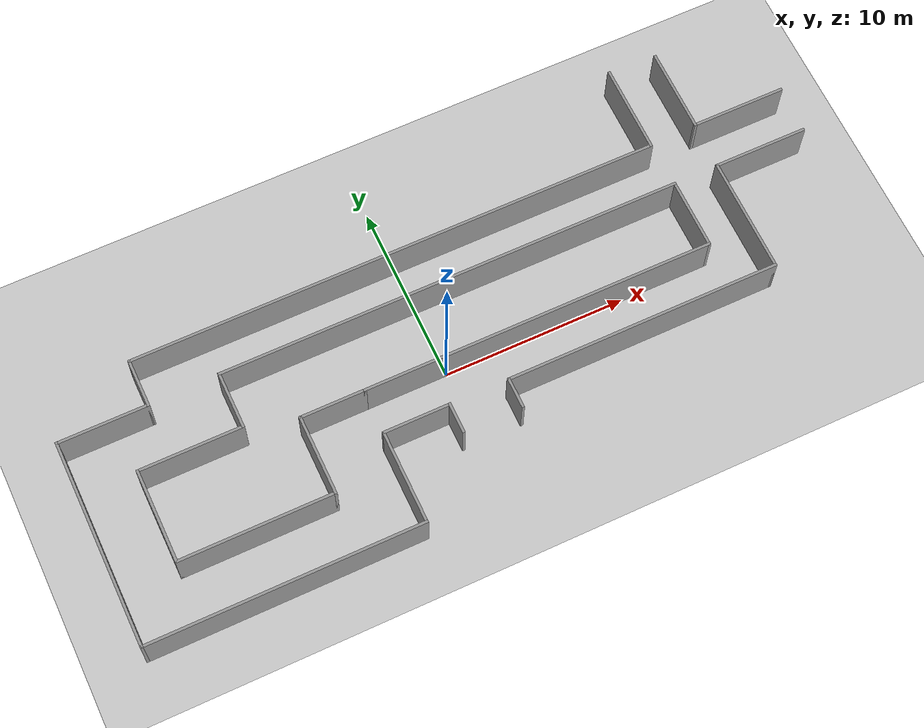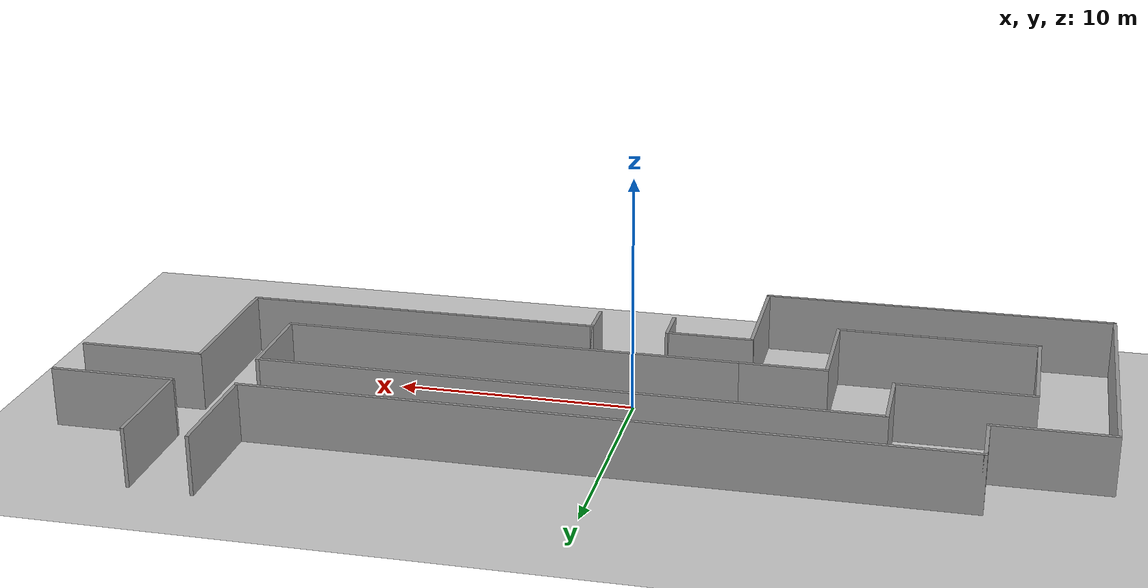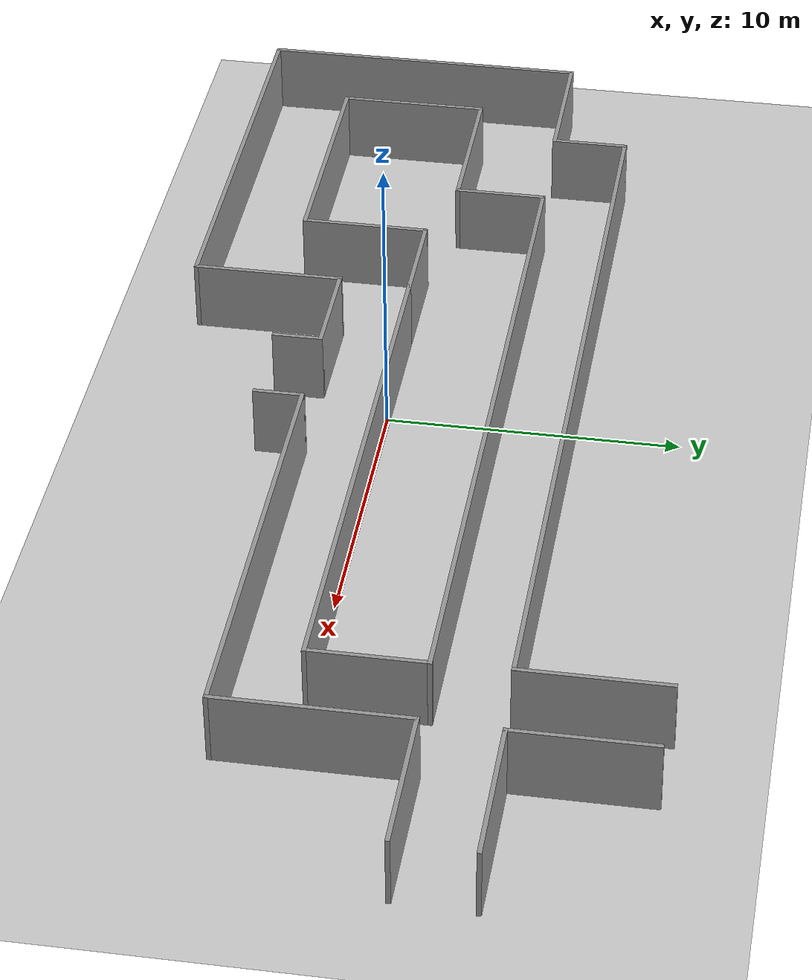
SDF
<sdf version="1.6">
 <world name="default">
  <light name="sun" type="directional">
   <pose>0 0 10 0 -0 0</pose>
   <diffuse>0.8 0.8 0.8 1</diffuse>
   <specular>0.1 0.1 0.1 1</specular>
   <attenuation>
    <range>1000</range>
    <constant>0.9</constant>
    <linear>0.01</linear>
    <quadratic>0.001</quadratic>
   </attenuation>
   <direction>-0.5 0.5 -1</direction>
  </light>
  <model name="ground_plane">
   <static>1</static>
   <link name="link">
    <collision name="collision">
     <geometry><plane><normal>0 0 1</normal><size>100 100</size></plane></geometry>
     <surface><friction><ode><mu>100</mu><mu2>50</mu2></ode></friction></surface>
    </collision>
    <visual name="visual">
     <cast_shadows>0</cast_shadows>
     <geometry><plane><normal>0 0 1</normal><size>100 100</size></plane></geometry>
     <material>
      <script><uri>file://media/materials/scripts/gazebo.material</uri><name>Gazebo/Grey</name></script>
     </material>
    </visual>
   </link>
  </model>
  <gravity>0 0 -9.8</gravity>
  <magnetic_field>6e-06 2.3e-05 -4.2e-05</magnetic_field>
  <atmosphere type="adiabatic"/>
  <physics name="default_physics" default="0" type="ode">
   <max_step_size>0.001</max_step_size>
   <real_time_factor>1</real_time_factor>
   <real_time_update_rate>1000</real_time_update_rate>
  </physics>
  <scene><ambient>0.4 0.4 0.4 1</ambient><background>0.7 0.7 0.7 1</background><shadows>1</shadows></scene>
  <spherical_coordinates>
   <surface_model>EARTH_WGS84</surface_model>
   <latitude_deg>0</latitude_deg>
   <longitude_deg>0</longitude_deg>
   <elevation>0</elevation>
   <heading_deg>0</heading_deg>
  </spherical_coordinates>
  <model name="multi_test.world">
   <pose>1.57993 1.86 0 0 -0 0</pose>
   <link name="Wall_0">
    <collision name="Wall_0_Collision">
     <geometry><box><size>3.75 0.15 2.5</size></box></geometry>
     <pose>0 0 1.25 0 -0 0</pose>
    </collision>
    <visual name="Wall_0_Visual">
     <pose>0 0 1.25 0 -0 0</pose>
     <geometry><box><size>3.75 0.15 2.5</size></box></geometry>
     <material>
      <script><uri>file://media/materials/scripts/gazebo.material</uri><name>Gazebo/Grey</name></script>
      <ambient>1 1 1 1</ambient>
     </material>
    </visual>
    <pose>-4.33993 -4.3 0 0 -0 0</pose>
   </link>
   <link name="Wall_1">
    <collision name="Wall_1_Collision">
     <geometry><box><size>1.75 0.15 2.5</size></box></geometry>
     <pose>0 0 1.25 0 -0 0</pose>
    </collision>
    <visual name="Wall_1_Visual">
     <pose>0 0 1.25 0 -0 0</pose>
     <geometry><box><size>1.75 0.15 2.5</size></box></geometry>
     <material>
      <script><uri>file://media/materials/scripts/gazebo.material</uri><name>Gazebo/Grey</name></script>
      <ambient>1 1 1 1</ambient>
     </material>
    </visual>
    <pose>-2.53993 -5.1 0 0 0 -1.5708</pose>
   </link>
   <link name="Wall_10">
    <collision name="Wall_10_Collision">
     <geometry><box><size>25.75 0.15 2.5</size></box></geometry>
     <pose>0 0 1.25 0 -0 0</pose>
    </collision>
    <visual name="Wall_10_Visual">
     <pose>0 0 1.25 0 -0 0</pose>
     <geometry><box><size>25.75 0.15 2.5</size></box></geometry>
     <material>
      <script><uri>file://media/materials/scripts/gazebo.material</uri><name>Gazebo/Grey</name></script>
      <ambient>1 1 1 1</ambient>
     </material>
    </visual>
    <pose>0.492235 2.01907 0 0 -0 3.14159</pose>
   </link>
   <link name="Wall_11">
    <collision name="Wall_11_Collision">
     <geometry><box><size>3.25 0.15 2.5</size></box></geometry>
     <pose>0 0 1.25 0 -0 0</pose>
    </collision>
    <visual name="Wall_11_Visual">
     <pose>0 0 1.25 0 -0 0</pose>
     <geometry><box><size>3.25 0.15 2.5</size></box></geometry>
     <material>
      <script><uri>file://media/materials/scripts/gazebo.material</uri><name>Gazebo/Grey</name></script>
      <ambient>1 1 1 1</ambient>
     </material>
    </visual>
    <pose>-12.3078 0.469066 0 0 0 -1.5708</pose>
   </link>
   <link name="Wall_12">
    <collision name="Wall_12_Collision">
     <geometry><box><size>5.75 0.15 2.5</size></box></geometry>
     <pose>0 0 1.25 0 -0 0</pose>
    </collision>
    <visual name="Wall_12_Visual">
     <pose>0 0 1.25 0 -0 0</pose>
     <geometry><box><size>5.75 0.15 2.5</size></box></geometry>
     <material>
      <script><uri>file://media/materials/scripts/gazebo.material</uri><name>Gazebo/Grey</name></script>
      <ambient>1 1 1 1</ambient>
     </material>
    </visual>
    <pose>-15.1078 -1.08093 0 0 -0 3.14159</pose>
   </link>
   <link name="Wall_13">
    <collision name="Wall_13_Collision">
     <geometry><box><size>5.25 0.15 2.5</size></box></geometry>
     <pose>0 0 1.25 0 -0 0</pose>
    </collision>
    <visual name="Wall_13_Visual">
     <pose>0 0 1.25 0 -0 0</pose>
     <geometry><box><size>5.25 0.15 2.5</size></box></geometry>
     <material>
      <script><uri>file://media/materials/scripts/gazebo.material</uri><name>Gazebo/Grey</name></script>
      <ambient>1 1 1 1</ambient>
     </material>
    </visual>
    <pose>-17.9078 -3.63093 0 0 0 -1.5708</pose>
   </link>
   <link name="Wall_14">
    <collision name="Wall_14_Collision">
     <geometry><box><size>8.5 0.15 2.5</size></box></geometry>
     <pose>0 0 1.25 0 -0 0</pose>
    </collision>
    <visual name="Wall_14_Visual">
     <pose>0 0 1.25 0 -0 0</pose>
     <geometry><box><size>8.5 0.15 2.5</size></box></geometry>
     <material>
      <script><uri>file://media/materials/scripts/gazebo.material</uri><name>Gazebo/Grey</name></script>
      <ambient>1 1 1 1</ambient>
     </material>
    </visual>
    <pose>-13.7328 -6.18093 0 0 -0 0</pose>
   </link>
   <link name="Wall_15">
    <collision name="Wall_15_Collision">
     <geometry><box><size>4.5 0.15 2.5</size></box></geometry>
     <pose>0 0 1.25 0 -0 0</pose>
    </collision>
    <visual name="Wall_15_Visual">
     <pose>0 0 1.25 0 -0 0</pose>
     <geometry><box><size>4.5 0.15 2.5</size></box></geometry>
     <material>
      <script><uri>file://media/materials/scripts/gazebo.material</uri><name>Gazebo/Grey</name></script>
      <ambient>1 1 1 1</ambient>
     </material>
    </visual>
    <pose>-9.55776 -4.00593 0 0 -0 1.5708</pose>
   </link>
   <link name="Wall_16">
    <collision name="Wall_16_Collision">
     <geometry><box><size>3.65 0.15 2.5</size></box></geometry>
     <pose>0 0 1.25 0 -0 0</pose>
    </collision>
    <visual name="Wall_16_Visual">
     <pose>0 0 1.25 0 -0 0</pose>
     <geometry><box><size>3.65 0.15 2.5</size></box></geometry>
     <material>
      <script><uri>file://media/materials/scripts/gazebo.material</uri><name>Gazebo/Grey</name></script>
      <ambient>1 1 1 1</ambient>
     </material>
    </visual>
    <pose>-7.80776 -1.83093 0 0 -0 0</pose>
   </link>
   <link name="Wall_18">
    <collision name="Wall_18_Collision">
     <geometry><box><size>5.25 0.15 2.5</size></box></geometry>
     <pose>0 0 1.25 0 -0 0</pose>
    </collision>
    <visual name="Wall_18_Visual">
     <pose>0 0 1.25 0 -0 0</pose>
     <geometry><box><size>5.25 0.15 2.5</size></box></geometry>
     <material>
      <script><uri>file://media/materials/scripts/gazebo.material</uri><name>Gazebo/Grey</name></script>
      <ambient>1 1 1 1</ambient>
     </material>
    </visual>
    <pose>18.3483 2.03305 0 0 -0 0</pose>
   </link>
   <link name="Wall_20">
    <collision name="Wall_20_Collision">
     <geometry><box><size>5.25 0.15 2.5</size></box></geometry>
     <pose>0 0 1.25 0 -0 0</pose>
    </collision>
    <visual name="Wall_20_Visual">
     <pose>0 0 1.25 0 -0 0</pose>
     <geometry><box><size>5.25 0.15 2.5</size></box></geometry>
     <material>
      <script><uri>file://media/materials/scripts/gazebo.material</uri><name>Gazebo/Grey</name></script>
      <ambient>1 1 1 1</ambient>
     </material>
    </visual>
    <pose>18.4399 4.67245 0 0 -0 3.14159</pose>
   </link>
   <link name="Wall_21">
    <collision name="Wall_21_Collision">
     <geometry><box><size>4.75 0.15 2.5</size></box></geometry>
     <pose>0 0 1.25 0 -0 0</pose>
    </collision>
    <visual name="Wall_21_Visual">
     <pose>0 0 1.25 0 -0 0</pose>
     <geometry><box><size>4.75 0.15 2.5</size></box></geometry>
     <material>
      <script><uri>file://media/materials/scripts/gazebo.material</uri><name>Gazebo/Grey</name></script>
      <ambient>1 1 1 1</ambient>
     </material>
    </visual>
    <pose>15.8899 6.97245 0 0 -0 1.5708</pose>
   </link>
   <link name="Wall_23">
    <collision name="Wall_23_Collision">
     <geometry><box><size>5.25 0.15 2.5</size></box></geometry>
     <pose>0 0 1.25 0 -0 0</pose>
    </collision>
    <visual name="Wall_23_Visual">
     <pose>0 0 1.25 0 -0 0</pose>
     <geometry><box><size>5.25 0.15 2.5</size></box></geometry>
     <material>
      <script><uri>file://media/materials/scripts/gazebo.material</uri><name>Gazebo/Grey</name></script>
      <ambient>1 1 1 1</ambient>
     </material>
    </visual>
    <pose>-6.13993 -6.85 0 0 0 -1.5708</pose>
   </link>
   <link name="Wall_24">
    <collision name="Wall_24_Collision">
     <geometry><box><size>15 0.15 2.5</size></box></geometry>
     <pose>0 0 1.25 0 -0 0</pose>
    </collision>
    <visual name="Wall_24_Visual">
     <pose>0 0 1.25 0 -0 0</pose>
     <geometry><box><size>15 0.15 2.5</size></box></geometry>
     <material>
      <script><uri>file://media/materials/scripts/gazebo.material</uri><name>Gazebo/Grey</name></script>
      <ambient>1 1 1 1</ambient>
     </material>
    </visual>
    <pose>-13.5649 -9.4 0 0 -0 3.14159</pose>
   </link>
   <link name="Wall_25">
    <collision name="Wall_25_Collision">
     <geometry><box><size>11.5 0.15 2.5</size></box></geometry>
     <pose>0 0 1.25 0 -0 0</pose>
    </collision>
    <visual name="Wall_25_Visual">
     <pose>0 0 1.25 0 -0 0</pose>
     <geometry><box><size>11.5 0.15 2.5</size></box></geometry>
     <material>
      <script><uri>file://media/materials/scripts/gazebo.material</uri><name>Gazebo/Grey</name></script>
      <ambient>1 1 1 1</ambient>
     </material>
    </visual>
    <pose>-20.9899 -3.725 0 0 -0 1.5708</pose>
   </link>
   <link name="Wall_26">
    <collision name="Wall_26_Collision">
     <geometry><box><size>5 0.15 2.5</size></box></geometry>
     <pose>0 0 1.25 0 -0 0</pose>
    </collision>
    <visual name="Wall_26_Visual">
     <pose>0 0 1.25 0 -0 0</pose>
     <geometry><box><size>5 0.15 2.5</size></box></geometry>
     <material>
      <script><uri>file://media/materials/scripts/gazebo.material</uri><name>Gazebo/Grey</name></script>
      <ambient>1 1 1 1</ambient>
     </material>
    </visual>
    <pose>-18.5649 1.95 0 0 -0 0</pose>
   </link>
   <link name="Wall_27">
    <collision name="Wall_27_Collision">
     <geometry><box><size>2.75 0.15 2.5</size></box></geometry>
     <pose>0 0 1.25 0 -0 0</pose>
    </collision>
    <visual name="Wall_27_Visual">
     <pose>0 0 1.25 0 -0 0</pose>
     <geometry><box><size>2.75 0.15 2.5</size></box></geometry>
     <material>
      <script><uri>file://media/materials/scripts/gazebo.material</uri><name>Gazebo/Grey</name></script>
      <ambient>1 1 1 1</ambient>
     </material>
    </visual>
    <pose>-16.1399 3.25 0 0 -0 1.5708</pose>
   </link>
   <link name="Wall_28">
    <collision name="Wall_28_Collision">
     <geometry><box><size>29.5 0.15 2.5</size></box></geometry>
     <pose>0 0 1.25 0 -0 0</pose>
    </collision>
    <visual name="Wall_28_Visual">
     <pose>0 0 1.25 0 -0 0</pose>
     <geometry><box><size>29.5 0.15 2.5</size></box></geometry>
     <material>
      <script><uri>file://media/materials/scripts/gazebo.material</uri><name>Gazebo/Grey</name></script>
      <ambient>1 1 1 1</ambient>
     </material>
    </visual>
    <pose>-1.46493 4.55 0 0 -0 0</pose>
   </link>
   <link name="Wall_29">
    <collision name="Wall_29_Collision">
     <geometry><box><size>5 0.15 2.5</size></box></geometry>
     <pose>0 0 1.25 0 -0 0</pose>
    </collision>
    <visual name="Wall_29_Visual">
     <pose>0 0 1.25 0 -0 0</pose>
     <geometry><box><size>5 0.15 2.5</size></box></geometry>
     <material>
      <script><uri>file://media/materials/scripts/gazebo.material</uri><name>Gazebo/Grey</name></script>
      <ambient>1 1 1 1</ambient>
     </material>
    </visual>
    <pose>13.2101 6.975 0 0 -0 1.5708</pose>
   </link>
   <link name="Wall_3">
    <collision name="Wall_3_Collision">
     <geometry><box><size>1.75 0.15 2.5</size></box></geometry>
     <pose>0 0 1.25 0 -0 0</pose>
    </collision>
    <visual name="Wall_3_Visual">
     <pose>0 0 1.25 0 -0 0</pose>
     <geometry><box><size>1.75 0.15 2.5</size></box></geometry>
     <material>
      <script><uri>file://media/materials/scripts/gazebo.material</uri><name>Gazebo/Grey</name></script>
      <ambient>1 1 1 1</ambient>
     </material>
    </visual>
    <pose>0.698316 -5.11695 0 0 -0 1.5708</pose>
   </link>
   <link name="Wall_5">
    <collision name="Wall_5_Collision">
     <geometry><box><size>15.25 0.15 2.5</size></box></geometry>
     <pose>0 0 1.25 0 -0 0</pose>
    </collision>
    <visual name="Wall_5_Visual">
     <pose>0 0 1.25 0 -0 0</pose>
     <geometry><box><size>15.25 0.15 2.5</size></box></geometry>
     <material>
      <script><uri>file://media/materials/scripts/gazebo.material</uri><name>Gazebo/Grey</name></script>
      <ambient>1 1 1 1</ambient>
     </material>
    </visual>
    <pose>8.24832 -4.31695 0 0 -0 0</pose>
   </link>
   <link name="Wall_6">
    <collision name="Wall_6_Collision">
     <geometry><box><size>6.5 0.15 2.5</size></box></geometry>
     <pose>0 0 1.25 0 -0 0</pose>
    </collision>
    <visual name="Wall_6_Visual">
     <pose>0 0 1.25 0 -0 0</pose>
     <geometry><box><size>6.5 0.15 2.5</size></box></geometry>
     <material>
      <script><uri>file://media/materials/scripts/gazebo.material</uri><name>Gazebo/Grey</name></script>
      <ambient>1 1 1 1</ambient>
     </material>
    </visual>
    <pose>15.7983 -1.14195 0 0 -0 1.5708</pose>
   </link>
   <link name="Wall_8">
    <collision name="Wall_8_Collision">
     <geometry><box><size>19.5 0.15 2.5</size></box></geometry>
     <pose>0 0 1.25 0 -0 0</pose>
    </collision>
    <visual name="Wall_8_Visual">
     <pose>0 0 1.25 0 -0 0</pose>
     <geometry><box><size>19.5 0.15 2.5</size></box></geometry>
     <material>
      <script><uri>file://media/materials/scripts/gazebo.material</uri><name>Gazebo/Grey</name></script>
      <ambient>1 1 1 1</ambient>
     </material>
    </visual>
    <pose>3.61723 -1.83093 0 0 -0 0</pose>
   </link>
   <link name="Wall_9">
    <collision name="Wall_9_Collision">
     <geometry><box><size>4 0.15 2.5</size></box></geometry>
     <pose>0 0 1.25 0 -0 0</pose>
    </collision>
    <visual name="Wall_9_Visual">
     <pose>0 0 1.25 0 -0 0</pose>
     <geometry><box><size>4 0.15 2.5</size></box></geometry>
     <material>
      <script><uri>file://media/materials/scripts/gazebo.material</uri><name>Gazebo/Grey</name></script>
      <ambient>1 1 1 1</ambient>
     </material>
    </visual>
    <pose>13.2922 0.094067 0 0 -0 1.5708</pose>
   </link>
   <static>1</static>
  </model>
 </world>
</sdf>
